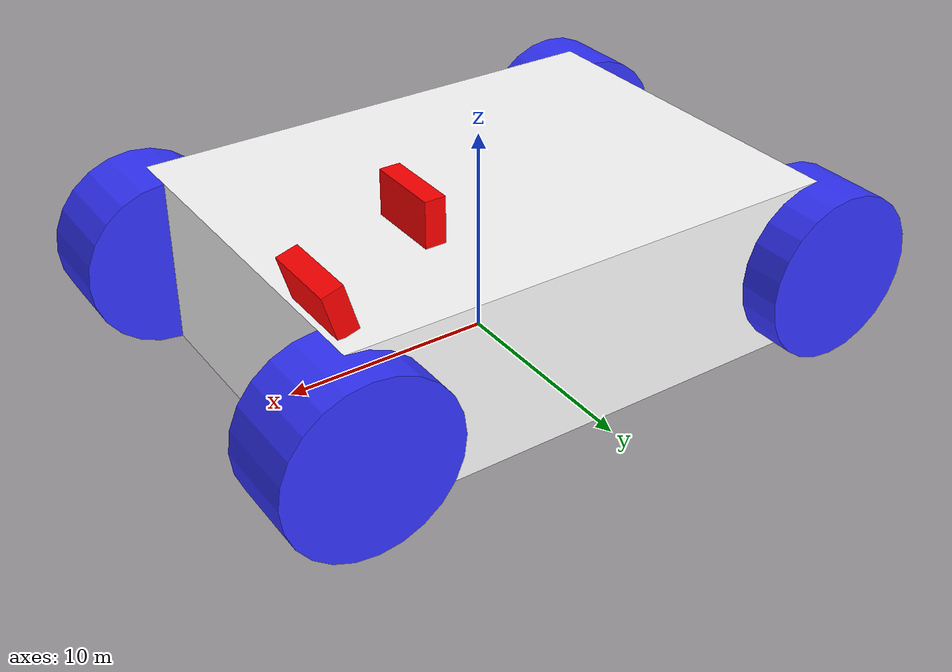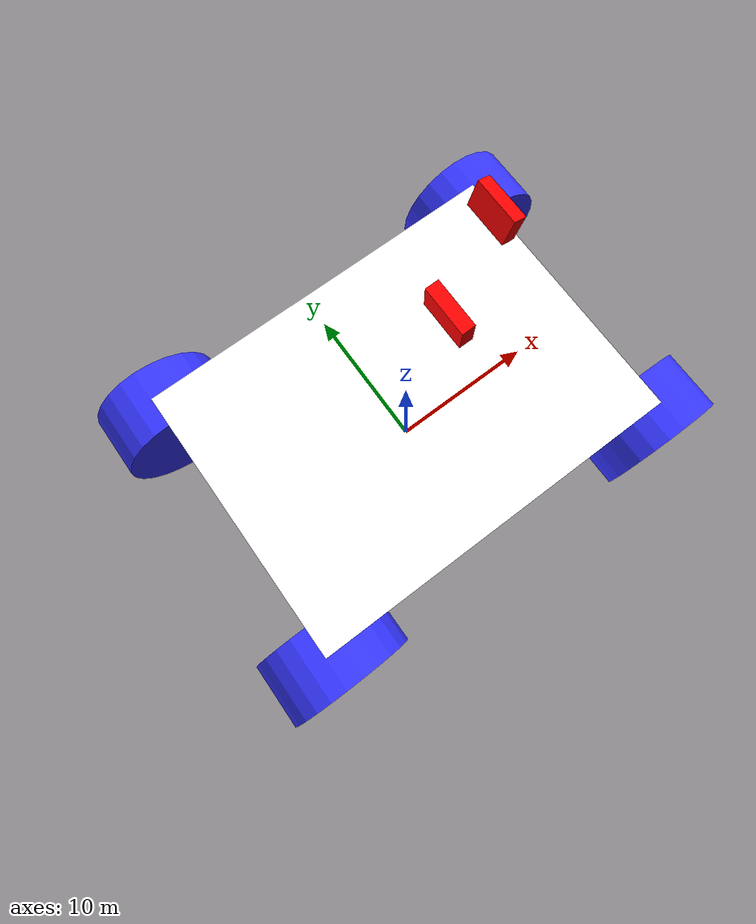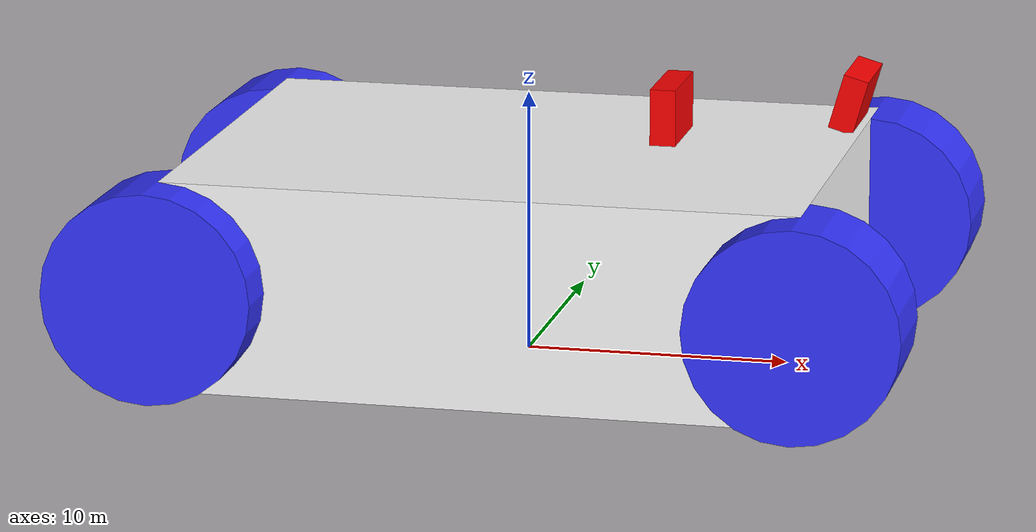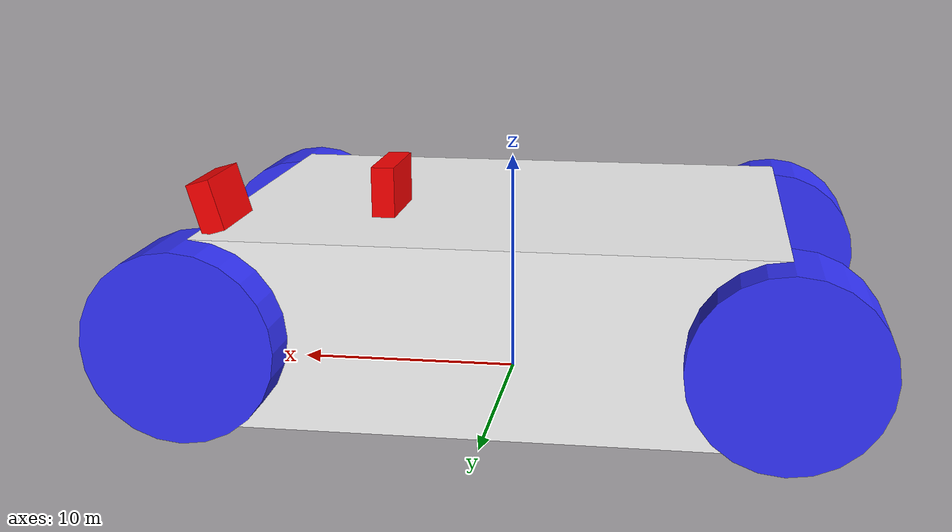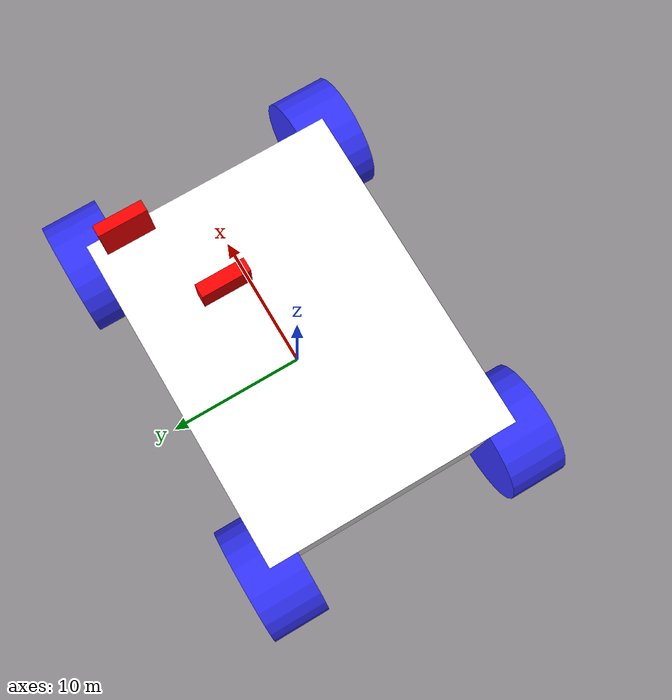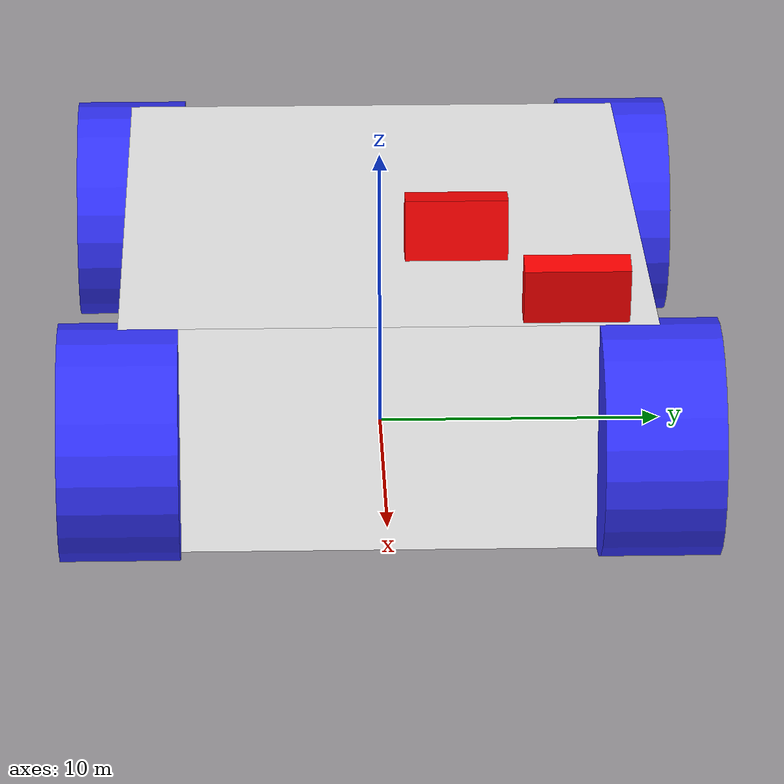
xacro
<?xml version="1.0"?>
<robot xmlns:xacro="http://www.ros.org/wiki/xacro"  name="robot">
    <xacro:include filename="robot_values.xacro"/>
    <xacro:include filename="inertial_macros.xacro"/>

    <material name="white">
        <color rgba="1 1 1 1"/>
    </material>

    <material name="red">
        <color rgba="1 0 0 1"/>
    </material>

    <material name="blue">
        <color rgba="0.2 0.2 1 1"/>
    </material>

    <!-- BASE LINK -->

    <link name="base_link">

    </link>

    <!-- BASE_FOOTPRINT LINK -->

    <joint name="base_footprint_joint" type="fixed">
        <parent link="base_link"/>
        <child link="base_footprint"/>
        <origin xyz="0 0 0" rpy="0 0 0"/>
    </joint>

    <link name="base_footprint">
    </link>

    <!-- CHASSIS LINK -->

    <joint name="chassis_joint" type="fixed">
        <parent link="base_link"/>
        <child link = "chassis"/>
        <origin xyz="-${chassis_x / 2} 0 0"/>
    </joint>

    <link name="chassis">
        <visual>
            <origin xyz="${chassis_x / 2} 0 ${chassis_z / 2}"/>
            <geometry>
                <box size="${chassis_x} ${chassis_y} ${chassis_z}"/>
            </geometry>
            <material name="white"/>
        </visual>
        <collision>
            <origin xyz="${chassis_x / 2} 0 ${chassis_z / 2}"/>
            <geometry>
                <box size="${chassis_x} ${chassis_y} ${chassis_z}"/>
            </geometry>
        </collision>
        <xacro:inertial_box mass="0.5" x="${chassis_x}" y="${chassis_y}" z="${chassis_z}">
            <origin xyz="${chassis_x / 2} 0 ${chassis_z / 2}" rpy="0 0 0"/>
        </xacro:inertial_box>
    </link>

    <!-- Back Left Wheel Link -->

    <joint name="wbl" type="continuous">
        <parent link="chassis"/>
        <child link="back_left_wheel"/>
        <origin xyz="0 ${chassis_y / 2} ${chassis_z / 2}" rpy="-${pi / 2} 0 0"/>
        <axis xyz="0 0 1"/>
    </joint>

    <link name="back_left_wheel">
        <visual>
            <geometry>
                <cylinder radius="${wheel_radius}" length="${wheel_length}"/>
            </geometry>
            <material name="blue"/>
        </visual>
        <collision>
            <geometry>
                <cylinder radius="${wheel_radius}" length="${wheel_length}"/>
            </geometry>
        </collision>
        <xacro:inertial_cylinder mass="0.1" length="${wheel_length}" radius="${wheel_radius}">
            <origin xyz="0 0 0" rpy="0 0 0"/>
        </xacro:inertial_cylinder>
    </link>

    <!-- Back Right Wheel Link -->

    <joint name="wbr" type="continuous">
        <parent link="chassis"/>
        <child link="back_right_wheel"/>
        <origin xyz="0 -${chassis_y / 2} ${chassis_z / 2}" rpy="-${pi / 2} 0 0"/>
        <axis xyz="0 0 1"/>
    </joint>

    <link name="back_right_wheel">
        <visual>
            <geometry>
                <cylinder radius="${wheel_radius}" length="${wheel_length}"/>
            </geometry>
            <material name="blue"/>
        </visual>
        <collision>
            <geometry>
                <cylinder radius="${wheel_radius}" length="${wheel_length}"/>
            </geometry>
        </collision>
        <xacro:inertial_cylinder mass="0.1" length="${wheel_length}" radius="${wheel_radius}">
            <origin xyz="0 0 0" rpy="0 0 0"/>
        </xacro:inertial_cylinder>
    </link>

    <!-- Front Right Wheel Link -->

    <joint name="wfr" type="continuous">
        <parent link="chassis"/>
        <child link="front_right_wheel"/>
        <origin xyz="${chassis_x} -${chassis_y / 2} ${chassis_z / 2}" rpy="-${pi / 2} 0 0"/>
        <axis xyz="0 0 1"/>
    </joint>

    <link name="front_right_wheel">
        <visual>
            <geometry>
                <cylinder radius="${wheel_radius}" length="${wheel_length}"/>
            </geometry>
            <material name="blue"/>
        </visual>
        <collision>
            <geometry>
                <cylinder radius="${wheel_radius}" length="${wheel_length}"/>
            </geometry>
        </collision>
        <xacro:inertial_cylinder mass="0.1" length="${wheel_length}" radius="${wheel_radius}">
            <origin xyz="0 0 0" rpy="0 0 0"/>
        </xacro:inertial_cylinder>
    </link>

    <!-- Front Left Wheel Link -->

    <joint name="wfl" type="continuous">
        <parent link="chassis"/>
        <child link="front_left_wheel"/>
        <origin xyz="${chassis_x} ${chassis_y / 2} ${chassis_z / 2}" rpy="-${pi / 2} 0 0"/>
        <axis xyz="0 0 1"/>
    </joint>

    <link name="front_left_wheel">
        <visual>
            <geometry>
                <cylinder radius="${wheel_radius}" length="${wheel_length}"/>
            </geometry>
            <material name="blue"/>
        </visual>
        <collision>
            <geometry>
                <cylinder radius="${wheel_radius}" length="${wheel_length}"/>
            </geometry>
        </collision>
        <xacro:inertial_cylinder mass="0.1" length="${wheel_length}" radius="${wheel_radius}">
            <origin xyz="0 0 0" rpy="0 0 0"/>
        </xacro:inertial_cylinder>
    </link>

    <!-- Camera -->

    <joint name="camera_joint" type="fixed">
        <parent link="chassis"/>
        <child link="camera_link"/>
        <origin xyz="${chassis_x - (camera_width / 2)} 6.25 ${chassis_z + (camera_height / 2)}" rpy="0 ${16 * pi / 180} 0"/>
    </joint>

    <link name="camera_link">
        <visual>
            <geometry>
                <box size="${camera_width} ${camera_length} ${camera_height}"/>
            </geometry>
            <material name="red"/>
        </visual>
        <collision>
            <geometry>
                <box size="${camera_width} ${camera_length} ${camera_height}"/>
            </geometry>
        </collision>
        <xacro:inertial_box mass="0.1" x="${camera_width}" y="${camera_length}" z="${camera_height}">
            <origin xyz="0 0 0" rpy="0 0 0"/>
        </xacro:inertial_box>
    </link>

    <joint name="imu_joint" type="fixed">
        <parent link="chassis"/>
        <child link="imu_link"/>
        <origin xyz="${chassis_x - (camera_width / 2) - 6.5} 2.5 ${chassis_z + (camera_height / 2)}" rpy="0 0 ${pi}"/>
    </joint>

    <link name="imu_link">
        <visual>
            <geometry>
                <box size="${camera_width} ${camera_length} ${camera_height}"/>
            </geometry>
            <material name="red"/>
        </visual>
        <collision>
            <geometry>
                <box size="${camera_width} ${camera_length} ${camera_height}"/>
            </geometry>
        </collision>
        <xacro:inertial_box mass="0.1" x="${camera_width}" y="${camera_length}" z="${camera_height}">
            <origin xyz="0 0 0" rpy="0 0 0"/>
        </xacro:inertial_box>
    </link>
</robot>

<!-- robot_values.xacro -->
<robot xmlns:xacro="http://www.ros.org/wiki/xacro"  name="robot">
    <xacro:property name="offset" value="39.3701"/>
    <xacro:property name="chassis_x" value="24"/>
    <xacro:property name="chassis_y" value="18"/>
    <xacro:property name="chassis_z" value="8"/>
    <xacro:property name="wheel_radius" value="4"/>
    <xacro:property name="wheel_length" value="4"/>
    <xacro:property name="wheel_separation" value="30"/>
    <xacro:property name="lidar_radius" value="${0.05 * offset}"/>
    <xacro:property name="lidar_height" value="${0.04 * offset}"/>

    <xacro:property name="camera_length" value="${0.09 * offset}"/>
    <xacro:property name="camera_width" value="${0.025 * offset}"/>
    <xacro:property name="camera_height" value="${0.055 * offset}"/>
</robot>
